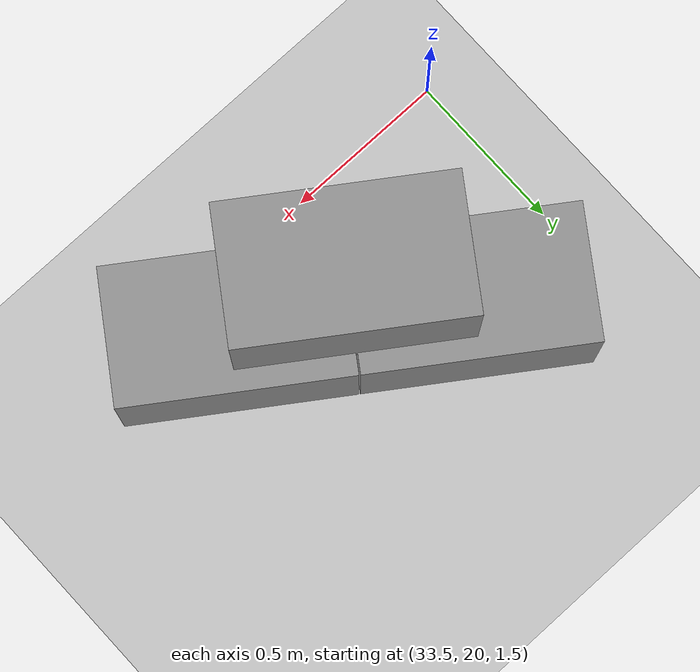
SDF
<sdf version="1.7">
 <world name="default">
  <model name="ground_plane">
   <static>1</static>
   <link name="link">
    <collision name="collision">
     <geometry><plane><normal>0 0 1</normal><size>100 100</size></plane></geometry>
     <surface>
      <contact><collide_bitmask>65535</collide_bitmask></contact>
      <friction><ode><mu>100</mu><mu2>50</mu2></ode></friction>
     </surface>
    </collision>
    <visual name="visual">
     <cast_shadows>0</cast_shadows>
     <geometry><plane><normal>0 0 1</normal><size>100 100</size></plane></geometry>
     <material>
      <script><uri>file://media/materials/scripts/gazebo.material</uri><name>Gazebo/Grey</name></script>
     </material>
    </visual>
   </link>
  </model>
  <model name="Add_Box_clone_clone_3_clone_8">
   <link name="link">
    <inertial>
     <mass>1</mass>
     <inertia>
      <ixx>0.166667</ixx>
      <ixy>0</ixy>
      <ixz>0</ixz>
      <iyy>0.166667</iyy>
      <iyz>0</iyz>
      <izz>0.166667</izz>
     </inertia>
    </inertial>
    <kinematic>1</kinematic>
    <gravity>0</gravity>
    <visual name="visual">
     <geometry><box><size>0.686 0.406 0.381</size></box></geometry>
     <material>
      <script><name>Gazebo/Grey</name><uri>file://media/materials/scripts/gazebo.material</uri></script>
      <shader type="pixel"><normal_map>__default__</normal_map></shader>
      <ambient>0.3 0.3 0.3 1</ambient>
      <diffuse>0.7 0.7 0.7 1</diffuse>
      <specular>0.01 0.01 0.01 1</specular>
      <emissive>0 0 0 1</emissive>
     </material>
    </visual>
    <collision name="collision">
     <geometry><box><size>1 1 1</size></box></geometry>
     <surface>
      <friction>
       <ode><mu>1</mu><mu2>1</mu2><fdir1>0 0 0</fdir1><slip1>0</slip1><slip2>0</slip2></ode>
       <torsional>
        <coefficient>1</coefficient>
        <patch_radius>0</patch_radius>
        <surface_radius>0</surface_radius>
        <use_patch_radius>1</use_patch_radius>
        <ode><slip>0</slip></ode>
       </torsional>
      </friction>
      <bounce><restitution_coefficient>0</restitution_coefficient><threshold>1e+06</threshold></bounce>
      <contact>
       <collide_without_contact>0</collide_without_contact>
       <collide_without_contact_bitmask>1</collide_without_contact_bitmask>
       <collide_bitmask>1</collide_bitmask>
       <ode>
        <soft_cfm>0</soft_cfm>
        <soft_erp>0.2</soft_erp>
        <kp>1e+13</kp>
        <kd>1</kd>
        <max_vel>0.01</max_vel>
        <min_depth>0</min_depth>
       </ode>
       <bullet>
        <split_impulse>1</split_impulse>
        <split_impulse_penetration_threshold>-0.01</split_impulse_penetration_threshold>
        <soft_cfm>0</soft_cfm>
        <soft_erp>0.2</soft_erp>
        <kp>1e+13</kp>
        <kd>1</kd>
       </bullet>
      </contact>
     </surface>
    </collision>
   </link>
   <link name="link_clone">
    <inertial>
     <mass>1</mass>
     <inertia>
      <ixx>0.166667</ixx>
      <ixy>0</ixy>
      <ixz>0</ixz>
      <iyy>0.166667</iyy>
      <iyz>0</iyz>
      <izz>0.166667</izz>
     </inertia>
    </inertial>
    <pose>-0.343354 -0.063316 0.354303 1e-05 -0 0</pose>
    <gravity>0</gravity>
    <visual name="visual">
     <geometry><box><size>0.686 0.406 0.381</size></box></geometry>
     <material>
      <script><name>Gazebo/Grey</name><uri>file://media/materials/scripts/gazebo.material</uri></script>
      <shader type="pixel"><normal_map>__default__</normal_map></shader>
      <ambient>0.3 0.3 0.3 1</ambient>
      <diffuse>0.7 0.7 0.7 1</diffuse>
      <specular>0.01 0.01 0.01 1</specular>
      <emissive>0 0 0 1</emissive>
     </material>
    </visual>
    <collision name="collision">
     <geometry><box><size>1 1 1</size></box></geometry>
     <surface>
      <friction>
       <ode><mu>1</mu><mu2>1</mu2><fdir1>0 0 0</fdir1><slip1>0</slip1><slip2>0</slip2></ode>
       <torsional>
        <coefficient>1</coefficient>
        <patch_radius>0</patch_radius>
        <surface_radius>0</surface_radius>
        <use_patch_radius>1</use_patch_radius>
        <ode><slip>0</slip></ode>
       </torsional>
      </friction>
      <bounce><restitution_coefficient>0</restitution_coefficient><threshold>1e+06</threshold></bounce>
      <contact>
       <collide_without_contact>0</collide_without_contact>
       <collide_without_contact_bitmask>1</collide_without_contact_bitmask>
       <collide_bitmask>1</collide_bitmask>
       <ode>
        <soft_cfm>0</soft_cfm>
        <soft_erp>0.2</soft_erp>
        <kp>1e+13</kp>
        <kd>1</kd>
        <max_vel>0.01</max_vel>
        <min_depth>0</min_depth>
       </ode>
       <bullet>
        <split_impulse>1</split_impulse>
        <split_impulse_penetration_threshold>-0.01</split_impulse_penetration_threshold>
        <soft_cfm>0</soft_cfm>
        <soft_erp>0.2</soft_erp>
        <kp>1e+13</kp>
        <kd>1</kd>
       </bullet>
      </contact>
     </surface>
    </collision>
   </link>
   <link name="link_clone_clone">
    <inertial>
     <mass>1</mass>
     <inertia>
      <ixx>0.166667</ixx>
      <ixy>0</ixy>
      <ixz>0</ixz>
      <iyy>0.166667</iyy>
      <iyz>0</iyz>
      <izz>0.166667</izz>
     </inertia>
    </inertial>
    <pose>-0.690786 -0.000183 -1e-05 2e-05 -0 0</pose>
    <gravity>0</gravity>
    <visual name="visual">
     <geometry><box><size>0.686 0.406 0.381</size></box></geometry>
     <material>
      <script><name>Gazebo/Grey</name><uri>file://media/materials/scripts/gazebo.material</uri></script>
      <shader type="pixel"><normal_map>__default__</normal_map></shader>
      <ambient>0.3 0.3 0.3 1</ambient>
      <diffuse>0.7 0.7 0.7 1</diffuse>
      <specular>0.01 0.01 0.01 1</specular>
      <emissive>0 0 0 1</emissive>
     </material>
    </visual>
    <collision name="collision">
     <geometry><box><size>1 1 1</size></box></geometry>
     <surface>
      <friction>
       <ode><mu>1</mu><mu2>1</mu2><fdir1>0 0 0</fdir1><slip1>0</slip1><slip2>0</slip2></ode>
       <torsional>
        <coefficient>1</coefficient>
        <patch_radius>0</patch_radius>
        <surface_radius>0</surface_radius>
        <use_patch_radius>1</use_patch_radius>
        <ode><slip>0</slip></ode>
       </torsional>
      </friction>
      <bounce><restitution_coefficient>0</restitution_coefficient><threshold>1e+06</threshold></bounce>
      <contact>
       <collide_without_contact>0</collide_without_contact>
       <collide_without_contact_bitmask>1</collide_without_contact_bitmask>
       <collide_bitmask>1</collide_bitmask>
       <ode>
        <soft_cfm>0</soft_cfm>
        <soft_erp>0.2</soft_erp>
        <kp>1e+13</kp>
        <kd>1</kd>
        <max_vel>0.01</max_vel>
        <min_depth>0</min_depth>
       </ode>
       <bullet>
        <split_impulse>1</split_impulse>
        <split_impulse_penetration_threshold>-0.01</split_impulse_penetration_threshold>
        <soft_cfm>0</soft_cfm>
        <soft_erp>0.2</soft_erp>
        <kp>1e+13</kp>
        <kd>1</kd>
       </bullet>
      </contact>
     </surface>
    </collision>
   </link>
   <static>0</static>
   <pose>34.4144 20.1594 1.61518 0 0 -0.601541</pose>
  </model>
 </world>
</sdf>
